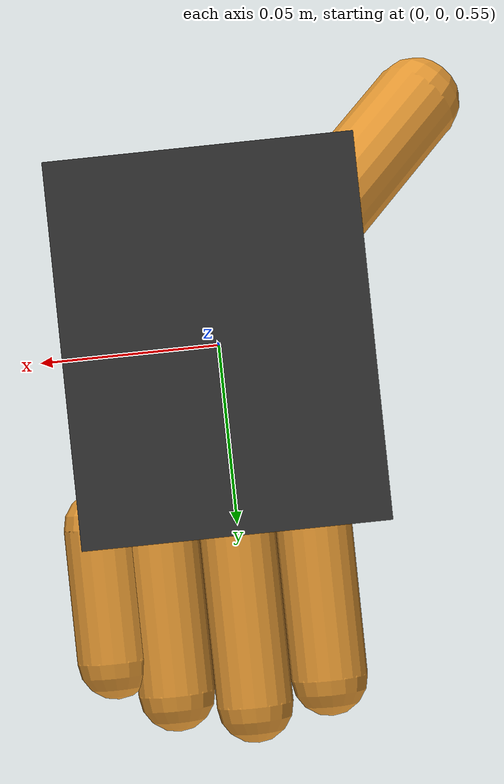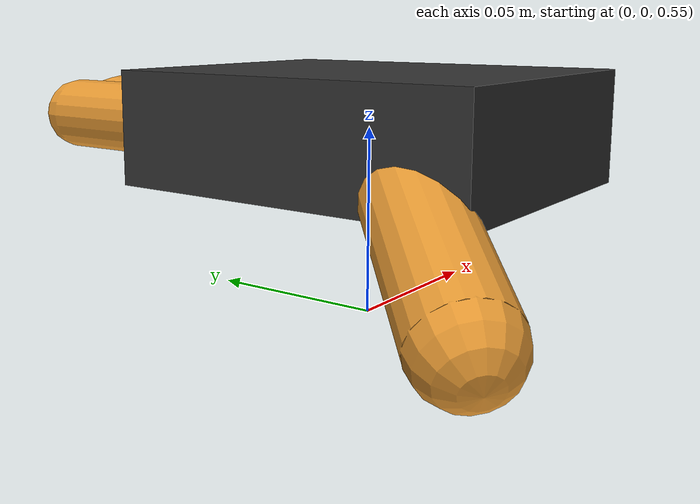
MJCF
<mujoco model="bionic_hand">
    <compiler angle="radian" />
    <option gravity="0 0 -9.81" />

    <asset>
        <texture type="skybox" name="sky" builtin="flat" rgb1="0.8 0.9 1" rgb2="0.8 0.9 1"
            width="512" height="512" />
        <material name="palm_mat" rgba="0.2 0.2 0.2 1" />
        <material name="finger_mat" rgba="0.9 0.6 0.2 1" />
    </asset>

    <worldbody>
        <geom type="plane" size="1 1 0.1" rgba="0.9 0.9 0.9 1" />
        <light pos="0 0 1.5" dir="0 0 -1" />

        <!-- Hand Palm Base (floating or fixed in space) -->
        <body name="palm" pos="0 0 0.6">
            <geom type="box" size="0.04 0.05 0.015" material="palm_mat" />

            <!-- 1. Thumb -->
            <body name="thumb_base" pos="-0.03 -0.03 -0.01">
                <joint name="thumb_joint" type="hinge" axis="0 1 0" range="-1.5 0.2" damping="0.1" />
                <geom type="capsule" size="0.012" fromto="0 0 0 -0.03 -0.03 -0.02"
                    material="finger_mat" />
            </body>

            <!-- 2. Index Finger -->
            <body name="index_base" pos="-0.02 0.05 0">
                <joint name="index_joint" type="hinge" axis="1 0 0" range="0 1.57" damping="0.1" />
                <geom type="capsule" size="0.01" fromto="0 0 0 0 0.04 0" material="finger_mat" />
            </body>

            <!-- 3. Middle Finger -->
            <body name="middle_base" pos="0 0.05 0">
                <joint name="middle_joint" type="hinge" axis="1 0 0" range="0 1.57" damping="0.1" />
                <geom type="capsule" size="0.01" fromto="0 0 0 0 0.045 0" material="finger_mat" />
            </body>

            <!-- 4. Ring Finger -->
            <body name="ring_base" pos="0.02 0.05 0">
                <joint name="ring_joint" type="hinge" axis="1 0 0" range="0 1.57" damping="0.1" />
                <geom type="capsule" size="0.01" fromto="0 0 0 0 0.04 0" material="finger_mat" />
            </body>

            <!-- 5. Pinky Finger -->
            <body name="pinky_base" pos="0.035 0.045 0">
                <joint name="pinky_joint" type="hinge" axis="1 0 0" range="0 1.57" damping="0.1" />
                <geom type="capsule" size="0.01" fromto="0 0 0 0 0.035 0" material="finger_mat" />
            </body>
        </body>
    </worldbody>

    <!-- Actuators to control each finger via data.ctrl -->
    <actuator>
        <motor joint="thumb_joint" gear="5" />
        <motor joint="index_joint" gear="5" />
        <motor joint="middle_joint" gear="5" />
        <motor joint="ring_joint" gear="5" />
        <motor joint="pinky_joint" gear="5" />
    </actuator>
</mujoco>
